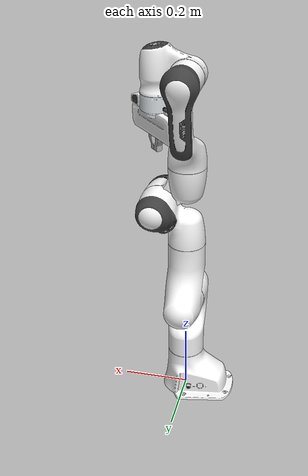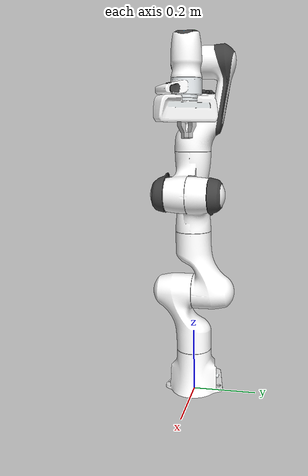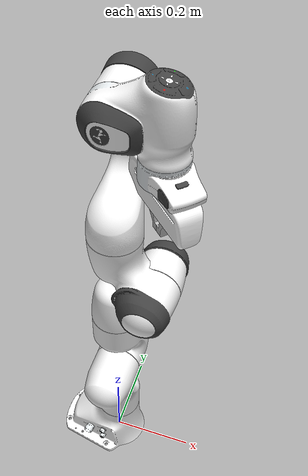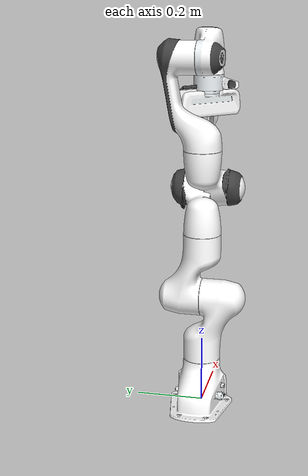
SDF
<?xml version="1.0"?>
<sdf version="1.7">
    <model name="panda">

        <!-- Fix To World -->
        <joint name="panda_joint_world" type="fixed">
            <parent>world</parent>
            <child>panda_link0</child>
        </joint>

        <!-- Arm Links -->
        <link name="panda_link0">
            <visual name="panda_link0_visual">
                <geometry>
                    <mesh>
                        <uri>model://panda/meshes/visual/link0.dae</uri>
                    </mesh>
                </geometry>
            </visual>
            <collision name="panda_link0_collision">
                <geometry>
                    <mesh>
                        <uri>model://panda/meshes/collision/link0.stl</uri>
                    </mesh>
                </geometry>
                <surface>
                    <friction>
                        <ode>
                            <mu>1.05</mu>
                            <mu2>1.05</mu2>
                        </ode>
                    </friction>
                </surface>
            </collision>
            <inertial>
                <pose>-0.025566 -2.87883e-05 0.057332 0 0 0</pose>
                <mass>2.814271300104062</mass>
                <inertia>
                    <ixx>0.0075390636364814695</ixx>
                    <iyy>0.010508017427382959</iyy>
                    <izz>0.009864933638708275</izz>
                    <ixy>-1.5053124574783335e-05</ixy>
                    <ixz>-0.0012144328835738973</ixz>
                    <iyz>1.0434803501032979e-05</iyz>
                </inertia>
            </inertial>
        </link>

        <link name="panda_link1">
            <pose relative_to="panda_joint1">0 0 0 0 0 0</pose>
            <visual name="panda_link1_visual">
                <geometry>
                    <mesh>
                        <uri>model://panda/meshes/visual/link1.dae</uri>
                    </mesh>
                </geometry>
            </visual>
            <collision name="panda_link1_collision">
                <geometry>
                    <mesh>
                        <uri>model://panda/meshes/collision/link1.stl</uri>
                    </mesh>
                </geometry>
                <surface>
                    <friction>
                        <ode>
                            <mu>1.05</mu>
                            <mu2>1.05</mu2>
                        </ode>
                    </friction>
                </surface>
            </collision>
            <inertial>
                <pose>-3.72212e-09 -0.0324958 -0.0675818 0 0 0</pose>
                <mass>2.6433170427227215</mass>
                <inertia>
                    <ixx>0.017405076982879724</ixx>
                    <iyy>0.015352077935781732</iyy>
                    <izz>0.005987891663073857</izz>
                    <ixy>-8.687986369621078e-09</ixy>
                    <ixz>-1.6277819062920423e-08</ixz>
                    <iyz>0.004510855959102245</iyz>
                </inertia>
            </inertial>
        </link>

        <link name="panda_link2">
            <pose relative_to="panda_joint2">0 0 0 0 0 0</pose>
            <visual name="panda_link2_visual">
                <geometry>
                    <mesh>
                        <uri>model://panda/meshes/visual/link2.dae</uri>
                    </mesh>
                </geometry>
            </visual>
            <collision name="panda_link2_collision">
                <geometry>
                    <mesh>
                        <uri>model://panda/meshes/collision/link2.stl</uri>
                    </mesh>
                </geometry>
                <surface>
                    <friction>
                        <ode>
                            <mu>1.05</mu>
                            <mu2>1.05</mu2>
                        </ode>
                    </friction>
                </surface>
            </collision>
            <inertial>
                <pose>3.17833e-07 -0.06861 0.0322285 0 0 0</pose>
                <mass>2.6652755331661186</mass>
                <inertia>
                    <ixx>0.01778694005635383</ixx>
                    <iyy>0.006044133867952844</iyy>
                    <izz>0.01571095500455695</izz>
                    <ixy>8.70635625879119e-08</ixy>
                    <ixz>3.752072058394008e-08</ixz>
                    <iyz>-0.004599490295490376</iyz>
                </inertia>
            </inertial>
        </link>

        <link name="panda_link3">
            <pose relative_to="panda_joint3">0 0 0 0 0 0</pose>
            <visual name="panda_link3_visual">
                <geometry>
                    <mesh>
                        <uri>model://panda/meshes/visual/link3.dae</uri>
                    </mesh>
                </geometry>
            </visual>
            <collision name="panda_link3_collision">
                <geometry>
                    <mesh>
                        <uri>model://panda/meshes/collision/link3.stl</uri>
                    </mesh>
                </geometry>
                <surface>
                    <friction>
                        <ode>
                            <mu>1.05</mu>
                            <mu2>1.05</mu2>
                        </ode>
                    </friction>
                </surface>
            </collision>
            <inertial>
                <pose>0.0469893 0.0316374 -0.031704 0 0 0</pose>
                <mass>2.3293714829045733</mass>
                <inertia>
                    <ixx>0.0075496764161139766</ixx>
                    <iyy>0.009680676080191398</iyy>
                    <izz>0.007944557422008086</izz>
                    <ixy>-0.0024320464513492225</ixy>
                    <ixz>-0.003250815048103007</ixz>
                    <iyz>-0.0021316282421730694</iyz>
                </inertia>
            </inertial>
        </link>

        <link name="panda_link4">
            <pose relative_to="panda_joint4">0 0 0 0 0 0</pose>
            <visual name="panda_link4_visual">
                <geometry>
                    <mesh>
                        <uri>model://panda/meshes/visual/link4.dae</uri>
                    </mesh>
                </geometry>
            </visual>
            <collision name="panda_link4_collision">
                <geometry>
                    <mesh>
                        <uri>model://panda/meshes/collision/link4.stl</uri>
                    </mesh>
                </geometry>
                <surface>
                    <friction>
                        <ode>
                            <mu>1.05</mu>
                            <mu2>1.05</mu2>
                        </ode>
                    </friction>
                </surface>
            </collision>
            <inertial>
                <pose>-0.0360505 0.0337069 0.0319019 0 0 0</pose>
                <mass>2.3104763646281508</mass>
                <inertia>
                    <ixx>0.007764568814864828</ixx>
                    <iyy>0.008015776929980149</iyy>
                    <izz>0.009955882308071066</izz>
                    <ixy>0.003371475204045935</ixy>
                    <ixz>-0.002343621113168248</ixz>
                    <iyz>0.0022917526161470624</iyz>
                </inertia>
            </inertial>
        </link>

        <link name="panda_link5">
            <pose relative_to="panda_joint5">0 0 0 0 0 0</pose>
            <visual name="panda_link5_visual">
                <geometry>
                    <mesh>
                        <uri>model://panda/meshes/visual/link5.dae</uri>
                    </mesh>
                </geometry>
            </visual>
            <collision name="panda_link5_collision">
                <geometry>
                    <mesh>
                        <uri>model://panda/meshes/collision/link5.stl</uri>
                    </mesh>
                </geometry>
                <surface>
                    <friction>
                        <ode>
                            <mu>1.05</mu>
                            <mu2>1.05</mu2>
                        </ode>
                    </friction>
                </surface>
            </collision>
            <inertial>
                <pose>-6.12525e-06 0.0610427 -0.104176 0 0 0</pose>
                <mass>2.6226426154892004</mass>
                <inertia>
                    <ixx>0.029070538014399377</ixx>
                    <iyy>0.027638529986528795</iyy>
                    <izz>0.004251111234400737</izz>
                    <ixy>6.208738268725568e-07</ixy>
                    <ixz>-1.0059151925023392e-05</ixz>
                    <iyz>-0.007424306477850814</iyz>
                </inertia>
            </inertial>
        </link>

        <link name="panda_link6">
            <pose relative_to="panda_joint6">0 0 0 0 0 0</pose>
            <visual name="panda_link6_visual">
                <geometry>
                    <mesh>
                        <uri>model://panda/meshes/visual/link6.dae</uri>
                    </mesh>
                </geometry>
            </visual>
            <collision name="panda_link6_collision">
                <geometry>
                    <mesh>
                        <uri>model://panda/meshes/collision/link6.stl</uri>
                    </mesh>
                </geometry>
                <surface>
                    <friction>
                        <ode>
                            <mu>1.05</mu>
                            <mu2>1.05</mu2>
                        </ode>
                    </friction>
                </surface>
            </collision>
            <inertial>
                <pose>0.051051 0.00910797 0.0106343 0 0 0</pose>
                <mass>1.5025804886626795</mass>
                <inertia>
                    <ixx>0.002940555801469018</ixx>
                    <iyy>0.00392105201248677</iyy>
                    <izz>0.0054115603870960195</izz>
                    <ixy>-0.00042391108351381507</ixy>
                    <ixz>0.000610007735338717</ixz>
                    <iyz>0.00012647545430836214</iyz>
                </inertia>
            </inertial>
        </link>

        <link name="panda_link7">
            <pose relative_to="panda_joint7">0 0 0 0 0 0</pose>
            <visual name="panda_link7_visual">
                <geometry>
                    <mesh>
                        <uri>model://panda/meshes/visual/link7.dae</uri>
                    </mesh>
                </geometry>
            </visual>
            <collision name="panda_link7_collision">
                <geometry>
                    <mesh>
                        <uri>model://panda/meshes/collision/link7.stl</uri>
                    </mesh>
                </geometry>
                <surface>
                    <friction>
                        <ode>
                            <mu>1.05</mu>
                            <mu2>1.05</mu2>
                        </ode>
                    </friction>
                </surface>
            </collision>
            <inertial>
                <pose>0.0109695 0.0107965 0.0650412 0 0 0</pose>
                <mass>0.5237668134788256</mass>
                <inertia>
                    <ixx>0.0008621467959726535</ixx>
                    <iyy>0.0008613100184801048</iyy>
                    <izz>0.0006961139396618219</izz>
                    <ixy>-0.00011871071570425467</ixy>
                    <ixz>3.866602604509339e-05</ixz>
                    <iyz>-9.057841649422724e-05</iyz>
                </inertia>
            </inertial>
        </link>

        <!-- Arm Joints -->
        <joint name="panda_joint1" type="revolute">
            <pose relative_to="panda_link0">0 0 0.333 0 0 0</pose>
            <parent>panda_link0</parent>
            <child>panda_link1</child>
            <axis>
                <xyz>0 0 1</xyz>
                <limit>
                    <effort>87</effort>
                    <lower>-2.897246558310587</lower>
                    <upper>2.897246558310587</upper>
                    <velocity>2.617993877991494</velocity>
                </limit>
                <dynamics>
                    <spring_reference>0</spring_reference>
                    <spring_stiffness>0</spring_stiffness>
                    <damping>21.75</damping>
                    <friction>3.48</friction>
                </dynamics>
            </axis>
        </joint>

        <joint name="panda_joint2" type="revolute">
            <pose relative_to="panda_link1">0 0 0 -1.570796326794897 0 0</pose>
            <parent>panda_link1</parent>
            <child>panda_link2</child>
            <axis>
                <xyz>0 0 1</xyz>
                <limit>
                    <effort>87</effort>
                    <lower>-1.762782544514273</lower>
                    <upper>1.762782544514273</upper>
                    <velocity>2.617993877991494</velocity>
                </limit>
                <dynamics>
                    <spring_reference>0</spring_reference>
                    <spring_stiffness>0</spring_stiffness>
                    <damping>21.75</damping>
                    <friction>3.48</friction>
                </dynamics>
            </axis>
        </joint>

        <joint name="panda_joint3" type="revolute">
            <pose relative_to="panda_link2">0 -0.316 0 1.570796326794897 0 0</pose>
            <parent>panda_link2</parent>
            <child>panda_link3</child>
            <axis>
                <xyz>0 0 1</xyz>
                <limit>
                    <effort>87</effort>
                    <lower>-2.897246558310587</lower>
                    <upper>2.897246558310587</upper>
                    <velocity>2.617993877991494</velocity>
                </limit>
                <dynamics>
                    <spring_reference>0</spring_reference>
                    <spring_stiffness>0</spring_stiffness>
                    <damping>21.75</damping>
                    <friction>3.48</friction>
                </dynamics>
            </axis>
        </joint>

        <joint name="panda_joint4" type="revolute">
            <pose relative_to="panda_link3">0.0825 0 0 1.570796326794897 0 0</pose>
            <parent>panda_link3</parent>
            <child>panda_link4</child>
            <axis>
                <xyz>0 0 1</xyz>
                <limit>
                    <effort>87</effort>
                    <lower>-3.07177948351002</lower>
                    <upper>-0.06981317007977318</upper>
                    <velocity>2.617993877991494</velocity>
                </limit>
                <dynamics>
                    <spring_reference>0</spring_reference>
                    <spring_stiffness>0</spring_stiffness>
                    <damping>21.75</damping>
                    <friction>3.48</friction>
                </dynamics>
            </axis>
        </joint>

        <joint name="panda_joint5" type="revolute">
            <pose relative_to="panda_link4">-0.0825 0.384 0 -1.570796326794897 0 0</pose>
            <parent>panda_link4</parent>
            <child>panda_link5</child>
            <axis>
                <xyz>0 0 1</xyz>
                <limit>
                    <effort>12</effort>
                    <lower>-2.897246558310587</lower>
                    <upper>2.897246558310587</upper>
                    <velocity>3.141592653589793</velocity>
                </limit>
                <dynamics>
                    <spring_reference>0</spring_reference>
                    <spring_stiffness>0</spring_stiffness>
                    <damping>3.0</damping>
                    <friction>0.48</friction>
                </dynamics>
            </axis>
        </joint>

        <joint name="panda_joint6" type="revolute">
            <pose relative_to="panda_link5">0 0 0 1.570796326794897 0 0</pose>
            <parent>panda_link5</parent>
            <child>panda_link6</child>
            <axis>
                <xyz>0 0 1</xyz>
                <limit>
                    <effort>12</effort>
                    <lower>-0.0174532925199433</lower>
                    <upper>3.752457891787809</upper>
                    <velocity>3.141592653589793</velocity>
                </limit>
                <dynamics>
                    <spring_reference>0</spring_reference>
                    <spring_stiffness>0</spring_stiffness>
                    <damping>3.0</damping>
                    <friction>0.48</friction>
                </dynamics>
            </axis>
        </joint>

        <joint name="panda_joint7" type="revolute">
            <pose relative_to="panda_link6">0.088 0 0 1.570796326794897 0 0</pose>
            <parent>panda_link6</parent>
            <child>panda_link7</child>
            <axis>
                <xyz>0 0 1</xyz>
                <limit>
                    <effort>12</effort>
                    <lower>-2.897246558310587</lower>
                    <upper>2.897246558310587</upper>
                    <velocity>3.141592653589793</velocity>
                </limit>
                <dynamics>
                    <spring_reference>0</spring_reference>
                    <spring_stiffness>0</spring_stiffness>
                    <damping>3.0</damping>
                    <friction>0.48</friction>
                </dynamics>
            </axis>
        </joint>

        <!-- Arm-Hand Fixed Joint -->
        <joint name="panda_hand_joint" type="fixed">
            <pose relative_to="panda_link7">0 0 0.107 0 0 -0.7853981633974483</pose>
            <parent>panda_link7</parent>
            <child>panda_hand</child>
        </joint>

        <!-- Hand Links -->
        <link name="panda_hand">
            <pose relative_to="panda_hand_joint">0 0 0 0 0 0</pose>
            <visual name="panda_hand_visual">
                <pose>0 0 0 0 0 0</pose>
                <geometry>
                    <mesh>
                        <uri>model://panda/meshes/visual/hand.dae</uri>
                    </mesh>
                </geometry>
            </visual>
            <collision name="panda_hand_collision">
                <pose>0 0 0 0 0 0</pose>
                <geometry>
                    <mesh>
                        <uri>model://panda/meshes/collision/hand.stl</uri>
                    </mesh>
                </geometry>
                <surface>
                    <friction>
                        <ode>
                            <mu>1.05</mu>
                            <mu2>1.05</mu2>
                        </ode>
                    </friction>
                </surface>
            </collision>
            <inertial>
                <pose>-6.7624e-06 0.00152435 0.0275912 0 0 0</pose>
                <mass>0.14060765127978503</mass>
                <inertia>
                    <ixx>0.0005365450414352072</ixx>
                    <iyy>7.70511954783727e-05</iyy>
                    <izz>0.0004938176882694914</izz>
                    <ixy>1.7911952957732454e-08</ixy>
                    <ixz>-2.320071910601251e-08</ixz>
                    <iyz>4.681149945315967e-08</iyz>
                </inertia>
            </inertial>
        </link>

        <link name="panda_leftfinger">
            <pose relative_to="panda_finger_joint1">0 0 0 0 0 0</pose>
            <visual name="panda_leftfinger_visual">
                <geometry>
                    <mesh>
                        <uri>model://panda/meshes/visual/finger.dae</uri>
                    </mesh>
                </geometry>
            </visual>
            <collision name="panda_leftfinger_collision">
                <geometry>
                    <mesh>
                        <uri>model://panda/meshes/collision/finger.stl</uri>
                    </mesh>
                </geometry>
                <surface>
                    <friction>
                        <ode>
                            <mu>2.15</mu>
                            <mu2>2.15</mu2>
                        </ode>
                    </friction>
                </surface>
            </collision>
            <inertial>
                <pose>-6.2561e-06 0.00227781 -0.0277116 0 0 0</pose>
                <mass>0.2238453537819424</mass>
                <inertia>
                    <ixx>6.74804167363695e-05</ixx>
                    <iyy>6.627189221641395e-05</iyy>
                    <izz>1.550396267804825e-05</izz>
                    <ixy>-4.1027443646025676e-09</ixy>
                    <ixz>1.8693673970152995e-08</ixz>
                    <iyz>1.1967548474390802e-05</iyz>
                </inertia>
            </inertial>
        </link>

        <link name="panda_rightfinger">
            <pose relative_to="panda_finger_joint2">0 0 0 0 0 0</pose>
            <visual name="panda_rightfinger_visual">
                <pose>0 0 0 0 0 3.141592653589793</pose>
                <geometry>
                    <mesh>
                        <uri>model://panda/meshes/visual/finger.dae</uri>
                    </mesh>
                </geometry>
            </visual>
            <collision name="panda_rightfinger_collision">
                <pose>0 0 0 0 0 3.141592653589793</pose>
                <geometry>
                    <mesh>
                        <uri>model://panda/meshes/collision/finger.stl</uri>
                    </mesh>
                </geometry>
                <surface>
                    <friction>
                        <ode>
                            <mu>2.15</mu>
                            <mu2>2.15</mu2>
                        </ode>
                    </friction>
                </surface>
            </collision>
            <inertial>
                <pose>-6.2561e-06 0.00227781 -0.0277116 0 0 3.141592653589793</pose>
                <mass>0.2238453537819424</mass>
                <inertia>
                    <ixx>6.74804167363695e-05</ixx>
                    <iyy>6.627189221641395e-05</iyy>
                    <izz>1.550396267804825e-05</izz>
                    <ixy>-4.1027443646025676e-09</ixy>
                    <ixz>1.8693673970152995e-08</ixz>
                    <iyz>1.1967548474390802e-05</iyz>
                </inertia>
            </inertial>
        </link>

        <!-- Finger Joints -->
        <joint name="panda_finger_joint1" type="prismatic">
            <pose relative_to="panda_hand">0 0 0.0584 0 0 0</pose>
            <parent>panda_hand</parent>
            <child>panda_leftfinger</child>
            <axis>
                <xyz>0 1 0</xyz>
                <limit>
                    <effort>20</effort>
                    <lower>0.0</lower>
                    <upper>0.04</upper>
                    <velocity>0.2</velocity>
                </limit>
                <dynamics>
                    <spring_reference>0</spring_reference>
                    <spring_stiffness>0</spring_stiffness>
                    <damping>10</damping>
                    <friction>0.5</friction>
                </dynamics>
            </axis>
        </joint>

        <joint name="panda_finger_joint2" type="prismatic">
            <pose relative_to="panda_hand">0 0 0.0584 0 0 0</pose>
            <parent>panda_hand</parent>
            <child>panda_rightfinger</child>
            <axis>
                <xyz>0 -1 0</xyz>
                <limit>
                    <effort>20</effort>
                    <lower>0.0</lower>
                    <upper>0.04</upper>
                    <velocity>0.2</velocity>
                </limit>
                <dynamics>
                    <spring_reference>0</spring_reference>
                    <spring_stiffness>0</spring_stiffness>
                    <damping>10</damping>
                    <friction>0.5</friction>
                </dynamics>
            </axis>
        </joint>

        <!-- End-effector -->
        <link name="panda_link8">
            <pose relative_to="end_effector_frame_fixed_joint">0 0 0 0 0 0</pose>
        </link>
        <joint name="end_effector_frame_fixed_joint" type="fixed">
            <pose relative_to="panda_hand">0 0 0.103 0 0 0</pose>
            <parent>panda_hand</parent>
            <child>panda_link8</child>
        </joint>

    </model>
</sdf>
